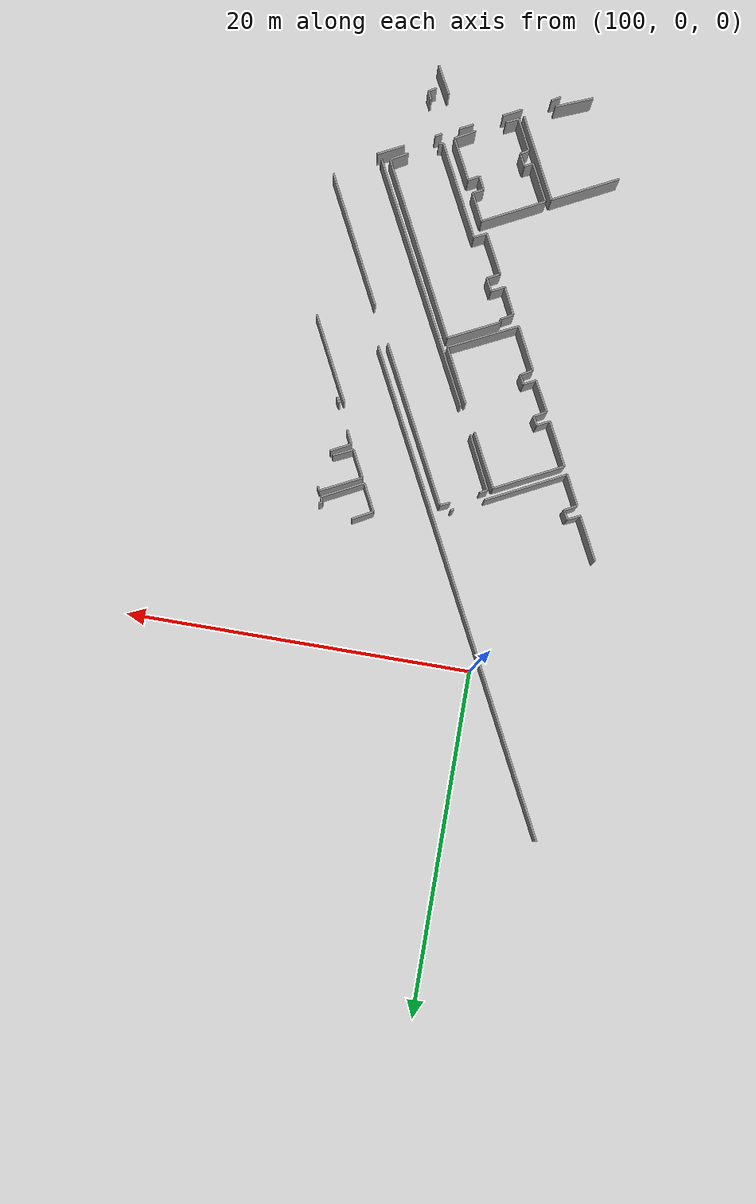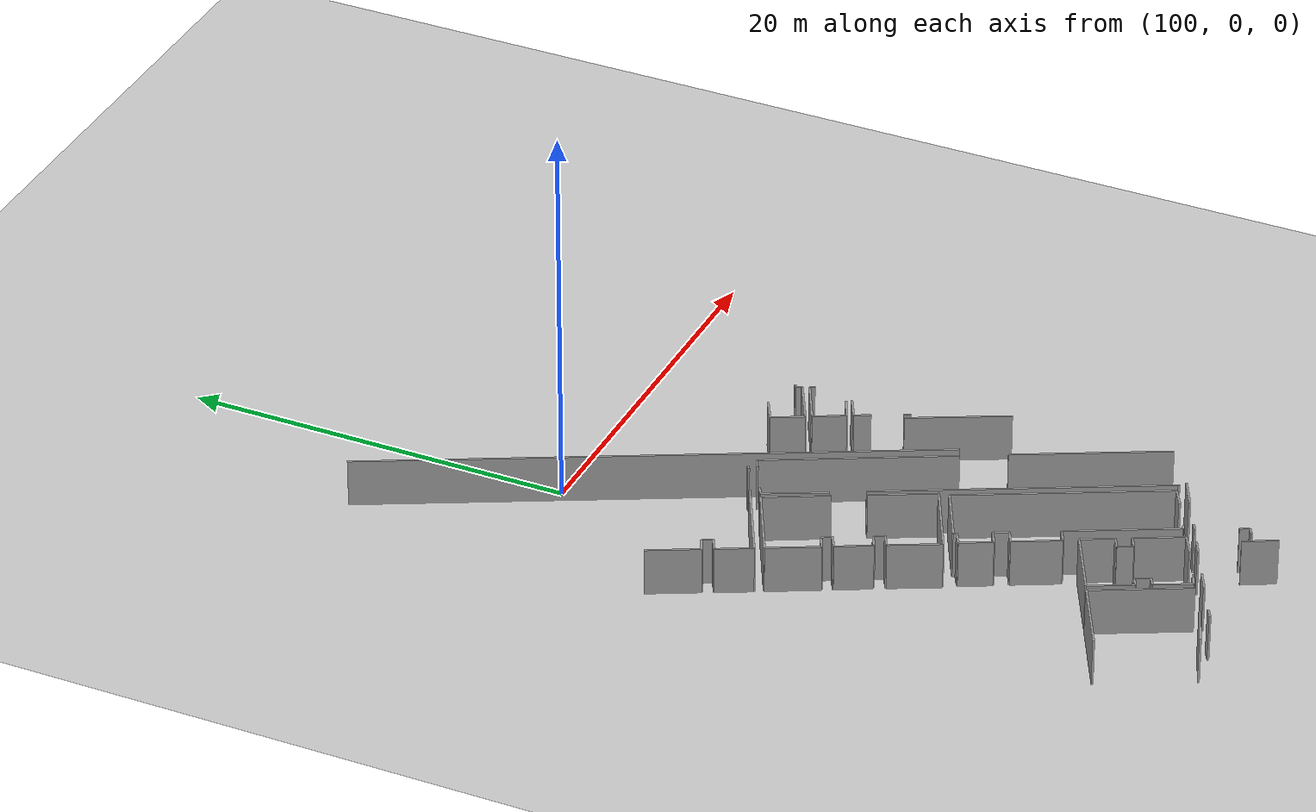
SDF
<sdf version="1.6">
 <world name="default">
  <model name="ground_plane">
   <static>1</static>
   <link name="link">
    <collision name="collision">
     <geometry><plane><normal>0 0 1</normal><size>100 100</size></plane></geometry>
     <surface><friction><ode><mu>100</mu><mu2>50</mu2></ode></friction></surface>
    </collision>
    <visual name="visual">
     <cast_shadows>0</cast_shadows>
     <geometry><plane><normal>0 0 1</normal><size>100 100</size></plane></geometry>
     <material>
      <script><uri>file://media/materials/scripts/gazebo.material</uri><name>Gazebo/Grey</name></script>
     </material>
    </visual>
   </link>
  </model>
  <model name="0510045925_40">
   <static>1</static>
   <link name="Wall_0">
    <collision name="Wall_0_Collision">
     <geometry><box><size>1.88859896353 0.1 2.5</size></box></geometry>
     <pose>0.944299481767 0 1.25 0 0 0</pose>
    </collision>
    <visual name="Wall_0_Visual">
     <pose>0.944299481767 0 1.25 0 0 0</pose>
     <geometry><box><size>1.88859896353 0.1 2.5</size></box></geometry>
     <material>
      <script><uri>file://media/materials/scripts/gazebo.material</uri><name>Gazebo/Grey</name></script>
      <ambient>1 1 1 1</ambient>
     </material>
    </visual>
    <pose>230.382782163 -112.972183447 0 0 0 2.03913168318</pose>
   </link>
   <link name="Wall_1">
    <collision name="Wall_1_Collision">
     <geometry><box><size>0.791682347017 0.1 2.5</size></box></geometry>
     <pose>0.395841173508 0 1.25 0 0 0</pose>
    </collision>
    <visual name="Wall_1_Visual">
     <pose>0.395841173508 0 1.25 0 0 0</pose>
     <geometry><box><size>0.791682347017 0.1 2.5</size></box></geometry>
     <material>
      <script><uri>file://media/materials/scripts/gazebo.material</uri><name>Gazebo/Grey</name></script>
      <ambient>1 1 1 1</ambient>
     </material>
    </visual>
    <pose>229.530265729 -111.286947032 0 0 0 0.492899159813</pose>
   </link>
   <link name="Wall_2">
    <collision name="Wall_2_Collision">
     <geometry><box><size>0.554091668918 0.1 2.5</size></box></geometry>
     <pose>0.277045834459 0 1.25 0 0 0</pose>
    </collision>
    <visual name="Wall_2_Visual">
     <pose>0.277045834459 0 1.25 0 0 0</pose>
     <geometry><box><size>0.554091668918 0.1 2.5</size></box></geometry>
     <material>
      <script><uri>file://media/materials/scripts/gazebo.material</uri><name>Gazebo/Grey</name></script>
      <ambient>1 1 1 1</ambient>
     </material>
    </visual>
    <pose>230.227709957 -110.91233725 0 0 0 2.06107698116</pose>
   </link>
   <link name="Wall_3">
    <collision name="Wall_3_Collision">
     <geometry><box><size>0.772580104799 0.1 2.5</size></box></geometry>
     <pose>0.3862900524 0 1.25 0 0 0</pose>
    </collision>
    <visual name="Wall_3_Visual">
     <pose>0.3862900524 0 1.25 0 0 0</pose>
     <geometry><box><size>0.772580104799 0.1 2.5</size></box></geometry>
     <material>
      <script><uri>file://media/materials/scripts/gazebo.material</uri><name>Gazebo/Grey</name></script>
      <ambient>1 1 1 1</ambient>
     </material>
    </visual>
    <pose>229.966802873 -110.42351717 0 0 0 -2.71085980303</pose>
   </link>
   <link name="Wall_4">
    <collision name="Wall_4_Collision">
     <geometry><box><size>2.72097665282 0.1 2.5</size></box></geometry>
     <pose>1.36048832641 0 1.25 0 0 0</pose>
    </collision>
    <visual name="Wall_4_Visual">
     <pose>1.36048832641 0 1.25 0 0 0</pose>
     <geometry><box><size>2.72097665282 0.1 2.5</size></box></geometry>
     <material>
      <script><uri>file://media/materials/scripts/gazebo.material</uri><name>Gazebo/Grey</name></script>
      <ambient>1 1 1 1</ambient>
     </material>
    </visual>
    <pose>229.264790234 -110.746097815 0 0 0 2.04211940662</pose>
   </link>
   <link name="Wall_35">
    <collision name="Wall_35_Collision">
     <geometry><box><size>0.193588526439 0.1 2.5</size></box></geometry>
     <pose>0.0967942632194 0 1.25 0 0 0</pose>
    </collision>
    <visual name="Wall_35_Visual">
     <pose>0.0967942632194 0 1.25 0 0 0</pose>
     <geometry><box><size>0.193588526439 0.1 2.5</size></box></geometry>
     <material>
      <script><uri>file://media/materials/scripts/gazebo.material</uri><name>Gazebo/Grey</name></script>
      <ambient>1 1 1 1</ambient>
     </material>
    </visual>
    <pose>236.592015431 -109.818963986 0 0 0 -2.54268139186</pose>
   </link>
   <link name="Wall_36">
    <collision name="Wall_36_Collision">
     <geometry><box><size>4.93782871065 0.1 2.5</size></box></geometry>
     <pose>2.46891435533 0 1.25 0 0 0</pose>
    </collision>
    <visual name="Wall_36_Visual">
     <pose>2.46891435533 0 1.25 0 0 0</pose>
     <geometry><box><size>4.93782871065 0.1 2.5</size></box></geometry>
     <material>
      <script><uri>file://media/materials/scripts/gazebo.material</uri><name>Gazebo/Grey</name></script>
      <ambient>1 1 1 1</ambient>
     </material>
    </visual>
    <pose>234.784954697 -110.735438187 0 0 0 -2.67148580978</pose>
   </link>
   <link name="Wall_37">
    <collision name="Wall_37_Collision">
     <geometry><box><size>2.68594198004 0.1 2.5</size></box></geometry>
     <pose>1.34297099002 0 1.25 0 0 0</pose>
    </collision>
    <visual name="Wall_37_Visual">
     <pose>1.34297099002 0 1.25 0 0 0</pose>
     <geometry><box><size>2.68594198004 0.1 2.5</size></box></geometry>
     <material>
      <script><uri>file://media/materials/scripts/gazebo.material</uri><name>Gazebo/Grey</name></script>
      <ambient>1 1 1 1</ambient>
     </material>
    </visual>
    <pose>234.472779879 -120.960559377 0 0 0 2.03626103995</pose>
   </link>
   <link name="Wall_38">
    <collision name="Wall_38_Collision">
     <geometry><box><size>0.76813784894 0.1 2.5</size></box></geometry>
     <pose>0.38406892447 0 1.25 0 0 0</pose>
    </collision>
    <visual name="Wall_38_Visual">
     <pose>0.38406892447 0 1.25 0 0 0</pose>
     <geometry><box><size>0.76813784894 0.1 2.5</size></box></geometry>
     <material>
      <script><uri>file://media/materials/scripts/gazebo.material</uri><name>Gazebo/Grey</name></script>
      <ambient>1 1 1 1</ambient>
     </material>
    </visual>
    <pose>233.26722672 -118.560366488 0 0 0 0.504146009762</pose>
   </link>
   <link name="Wall_39">
    <collision name="Wall_39_Collision">
     <geometry><box><size>0.570086011849 0.1 2.5</size></box></geometry>
     <pose>0.285043005925 0 1.25 0 0 0</pose>
    </collision>
    <visual name="Wall_39_Visual">
     <pose>0.285043005925 0 1.25 0 0 0</pose>
     <geometry><box><size>0.570086011849 0.1 2.5</size></box></geometry>
     <material>
      <script><uri>file://media/materials/scripts/gazebo.material</uri><name>Gazebo/Grey</name></script>
      <ambient>1 1 1 1</ambient>
     </material>
    </visual>
    <pose>233.939798482 -118.189309916 0 0 0 2.07746241748</pose>
   </link>
   <link name="Wall_40">
    <collision name="Wall_40_Collision">
     <geometry><box><size>0.750030735713 0.1 2.5</size></box></geometry>
     <pose>0.375015367857 0 1.25 0 0 0</pose>
    </collision>
    <visual name="Wall_40_Visual">
     <pose>0.375015367857 0 1.25 0 0 0</pose>
     <geometry><box><size>0.750030735713 0.1 2.5</size></box></geometry>
     <material>
      <script><uri>file://media/materials/scripts/gazebo.material</uri><name>Gazebo/Grey</name></script>
      <ambient>1 1 1 1</ambient>
     </material>
    </visual>
    <pose>233.663155757 -117.69084541 0 0 0 -2.67552374181</pose>
   </link>
   <link name="Wall_41">
    <collision name="Wall_41_Collision">
     <geometry><box><size>1.91479657271 0.1 2.5</size></box></geometry>
     <pose>0.957398286355 0 1.25 0 0 0</pose>
    </collision>
    <visual name="Wall_41_Visual">
     <pose>0.957398286355 0 1.25 0 0 0</pose>
     <geometry><box><size>1.91479657271 0.1 2.5</size></box></geometry>
     <material>
      <script><uri>file://media/materials/scripts/gazebo.material</uri><name>Gazebo/Grey</name></script>
      <ambient>1 1 1 1</ambient>
     </material>
    </visual>
    <pose>232.993122002 -118.027892693 0 0 0 2.0562002558</pose>
   </link>
   <link name="Wall_42">
    <collision name="Wall_42_Collision">
     <geometry><box><size>0.798350596777 0.1 2.5</size></box></geometry>
     <pose>0.399175298389 0 1.25 0 0 0</pose>
    </collision>
    <visual name="Wall_42_Visual">
     <pose>0.399175298389 0 1.25 0 0 0</pose>
     <geometry><box><size>0.798350596777 0.1 2.5</size></box></geometry>
     <material>
      <script><uri>file://media/materials/scripts/gazebo.material</uri><name>Gazebo/Grey</name></script>
      <ambient>1 1 1 1</ambient>
     </material>
    </visual>
    <pose>232.099743661 -116.334280856 0 0 0 0.500336217475</pose>
   </link>
   <link name="Wall_43">
    <collision name="Wall_43_Collision">
     <geometry><box><size>0.546959511866 0.1 2.5</size></box></geometry>
     <pose>0.273479755933 0 1.25 0 0 0</pose>
    </collision>
    <visual name="Wall_43_Visual">
     <pose>0.273479755933 0 1.25 0 0 0</pose>
     <geometry><box><size>0.546959511866 0.1 2.5</size></box></geometry>
     <material>
      <script><uri>file://media/materials/scripts/gazebo.material</uri><name>Gazebo/Grey</name></script>
      <ambient>1 1 1 1</ambient>
     </material>
    </visual>
    <pose>232.800233497 -115.951295652 0 0 0 2.06910612702</pose>
   </link>
   <link name="Wall_44">
    <collision name="Wall_44_Collision">
     <geometry><box><size>0.783648546966 0.1 2.5</size></box></geometry>
     <pose>0.391824273483 0 1.25 0 0 0</pose>
    </collision>
    <visual name="Wall_44_Visual">
     <pose>0.391824273483 0 1.25 0 0 0</pose>
     <geometry><box><size>0.783648546966 0.1 2.5</size></box></geometry>
     <material>
      <script><uri>file://media/materials/scripts/gazebo.material</uri><name>Gazebo/Grey</name></script>
      <ambient>1 1 1 1</ambient>
     </material>
    </visual>
    <pose>232.538818812 -115.470850994 0 0 0 -2.67026848623</pose>
   </link>
   <link name="Wall_45">
    <collision name="Wall_45_Collision">
     <geometry><box><size>2.71553219411 0.1 2.5</size></box></geometry>
     <pose>1.35776609705 0 1.25 0 0 0</pose>
    </collision>
    <visual name="Wall_45_Visual">
     <pose>1.35776609705 0 1.25 0 0 0</pose>
     <geometry><box><size>2.71553219411 0.1 2.5</size></box></geometry>
     <material>
      <script><uri>file://media/materials/scripts/gazebo.material</uri><name>Gazebo/Grey</name></script>
      <ambient>1 1 1 1</ambient>
     </material>
    </visual>
    <pose>231.840613182 -115.826679526 0 0 0 2.04230199174</pose>
   </link>
   <link name="Wall_46">
    <collision name="Wall_46_Collision">
     <geometry><box><size>4.27559902582 0.1 2.5</size></box></geometry>
     <pose>2.13779951291 0 1.25 0 0 0</pose>
    </collision>
    <visual name="Wall_46_Visual">
     <pose>2.13779951291 0 1.25 0 0 0</pose>
     <geometry><box><size>4.27559902582 0.1 2.5</size></box></geometry>
     <material>
      <script><uri>file://media/materials/scripts/gazebo.material</uri><name>Gazebo/Grey</name></script>
      <ambient>1 1 1 1</ambient>
     </material>
    </visual>
    <pose>230.607141951 -113.407451588 0 0 0 0.468505676917</pose>
   </link>
   <link name="Wall_47">
    <collision name="Wall_47_Collision">
     <geometry><box><size>3.38837195357 0.1 2.5</size></box></geometry>
     <pose>1.69418597679 0 1.25 0 0 0</pose>
    </collision>
    <visual name="Wall_47_Visual">
     <pose>1.69418597679 0 1.25 0 0 0</pose>
     <geometry><box><size>3.38837195357 0.1 2.5</size></box></geometry>
     <material>
      <script><uri>file://media/materials/scripts/gazebo.material</uri><name>Gazebo/Grey</name></script>
      <ambient>1 1 1 1</ambient>
     </material>
    </visual>
    <pose>234.422019746 -111.476789929 0 0 0 -1.09374918479</pose>
   </link>
   <link name="Wall_48">
    <collision name="Wall_48_Collision">
     <geometry><box><size>3.42417733766 0.1 2.5</size></box></geometry>
     <pose>1.71208866883 0 1.25 0 0 0</pose>
    </collision>
    <visual name="Wall_48_Visual">
     <pose>1.71208866883 0 1.25 0 0 0</pose>
     <geometry><box><size>3.42417733766 0.1 2.5</size></box></geometry>
     <material>
      <script><uri>file://media/materials/scripts/gazebo.material</uri><name>Gazebo/Grey</name></script>
      <ambient>1 1 1 1</ambient>
     </material>
    </visual>
    <pose>236.756985863 -116.035303672 0 0 0 -1.10413228568</pose>
   </link>
   <link name="Wall_49">
    <collision name="Wall_49_Collision">
     <geometry><box><size>4.25621784762 0.1 2.5</size></box></geometry>
     <pose>2.12810892381 0 1.25 0 0 0</pose>
    </collision>
    <visual name="Wall_49_Visual">
     <pose>2.12810892381 0 1.25 0 0 0</pose>
     <geometry><box><size>4.25621784762 0.1 2.5</size></box></geometry>
     <material>
      <script><uri>file://media/materials/scripts/gazebo.material</uri><name>Gazebo/Grey</name></script>
      <ambient>1 1 1 1</ambient>
     </material>
    </visual>
    <pose>238.2975559 -119.093347885 0 0 0 -2.68743885221</pose>
   </link>
   <link name="Wall_50">
    <collision name="Wall_50_Collision">
     <geometry><box><size>14.9826140354 0.1 2.5</size></box></geometry>
     <pose>7.49130701768 0 1.25 0 0 0</pose>
    </collision>
    <visual name="Wall_50_Visual">
     <pose>7.49130701768 0 1.25 0 0 0</pose>
     <geometry><box><size>14.9826140354 0.1 2.5</size></box></geometry>
     <material>
      <script><uri>file://media/materials/scripts/gazebo.material</uri><name>Gazebo/Grey</name></script>
      <ambient>1 1 1 1</ambient>
     </material>
    </visual>
    <pose>243.802492323 -129.213141798 0 0 0 2.04202723866</pose>
   </link>
   <link name="Wall_51">
    <collision name="Wall_51_Collision">
     <geometry><box><size>3.32022371351 0.1 2.5</size></box></geometry>
     <pose>1.66011185675 0 1.25 0 0 0</pose>
    </collision>
    <visual name="Wall_51_Visual">
     <pose>1.66011185675 0 1.25 0 0 0</pose>
     <geometry><box><size>3.32022371351 0.1 2.5</size></box></geometry>
     <material>
      <script><uri>file://media/materials/scripts/gazebo.material</uri><name>Gazebo/Grey</name></script>
      <ambient>1 1 1 1</ambient>
     </material>
    </visual>
    <pose>236.175782341 -114.308697749 0 0 0 2.03013656465</pose>
   </link>
   <link name="Wall_52">
    <collision name="Wall_52_Collision">
     <geometry><box><size>0.480639025663 0.1 2.5</size></box></geometry>
     <pose>0.240319512832 0 1.25 0 0 0</pose>
    </collision>
    <visual name="Wall_52_Visual">
     <pose>0.240319512832 0 1.25 0 0 0</pose>
     <geometry><box><size>0.480639025663 0.1 2.5</size></box></geometry>
     <material>
      <script><uri>file://media/materials/scripts/gazebo.material</uri><name>Gazebo/Grey</name></script>
      <ambient>1 1 1 1</ambient>
     </material>
    </visual>
    <pose>234.703738484 -111.332631151 0 0 0 0.491044484923</pose>
   </link>
   <link name="Wall_53">
    <collision name="Wall_53_Collision">
     <geometry><box><size>0.603206230897 0.1 2.5</size></box></geometry>
     <pose>0.301603115448 0 1.25 0 0 0</pose>
    </collision>
    <visual name="Wall_53_Visual">
     <pose>0.301603115448 0 1.25 0 0 0</pose>
     <geometry><box><size>0.603206230897 0.1 2.5</size></box></geometry>
     <material>
      <script><uri>file://media/materials/scripts/gazebo.material</uri><name>Gazebo/Grey</name></script>
      <ambient>1 1 1 1</ambient>
     </material>
    </visual>
    <pose>236.693535697 -110.264637953 0 0 0 0.440312865399</pose>
   </link>
   <link name="Wall_54">
    <collision name="Wall_54_Collision">
     <geometry><box><size>9.79878650992 0.1 2.5</size></box></geometry>
     <pose>4.89939325496 0 1.25 0 0 0</pose>
    </collision>
    <visual name="Wall_54_Visual">
     <pose>4.89939325496 0 1.25 0 0 0</pose>
     <geometry><box><size>9.79878650992 0.1 2.5</size></box></geometry>
     <material>
      <script><uri>file://media/materials/scripts/gazebo.material</uri><name>Gazebo/Grey</name></script>
      <ambient>1 1 1 1</ambient>
     </material>
    </visual>
    <pose>237.239207127 -110.00753788 0 0 0 -1.09687407531</pose>
   </link>
   <link name="Wall_55">
    <collision name="Wall_55_Collision">
     <geometry><box><size>8.03569557212 0.1 2.5</size></box></geometry>
     <pose>4.01784778606 0 1.25 0 0 0</pose>
    </collision>
    <visual name="Wall_55_Visual">
     <pose>4.01784778606 0 1.25 0 0 0</pose>
     <geometry><box><size>8.03569557212 0.1 2.5</size></box></geometry>
     <material>
      <script><uri>file://media/materials/scripts/gazebo.material</uri><name>Gazebo/Grey</name></script>
      <ambient>1 1 1 1</ambient>
     </material>
    </visual>
    <pose>242.799979696 -120.817162001 0 0 0 -1.10147049191</pose>
   </link>
   <link name="Wall_56">
    <collision name="Wall_56_Collision">
     <geometry><box><size>0.104498397889 0.1 2.5</size></box></geometry>
     <pose>0.0522491989443 0 1.25 0 0 0</pose>
    </collision>
    <visual name="Wall_56_Visual">
     <pose>0.0522491989443 0 1.25 0 0 0</pose>
     <geometry><box><size>0.104498397889 0.1 2.5</size></box></geometry>
     <material>
      <script><uri>file://media/materials/scripts/gazebo.material</uri><name>Gazebo/Grey</name></script>
      <ambient>1 1 1 1</ambient>
     </material>
    </visual>
    <pose>243.845638436 -129.308317048 0 0 0 1.99641879513</pose>
   </link>
   <link name="Wall_58">
    <collision name="Wall_58_Collision">
     <geometry><box><size>4.10851946526 0.1 2.5</size></box></geometry>
     <pose>2.05425973263 0 1.25 0 0 0</pose>
    </collision>
    <visual name="Wall_58_Visual">
     <pose>2.05425973263 0 1.25 0 0 0</pose>
     <geometry><box><size>4.10851946526 0.1 2.5</size></box></geometry>
     <material>
      <script><uri>file://media/materials/scripts/gazebo.material</uri><name>Gazebo/Grey</name></script>
      <ambient>1 1 1 1</ambient>
     </material>
    </visual>
    <pose>230.144463338 -130.409050532 0 0 0 0.468454600182</pose>
   </link>
   <link name="Wall_59">
    <collision name="Wall_59_Collision">
     <geometry><box><size>5.12687668526 0.1 2.5</size></box></geometry>
     <pose>2.56343834263 0 1.25 0 0 0</pose>
    </collision>
    <visual name="Wall_59_Visual">
     <pose>2.56343834263 0 1.25 0 0 0</pose>
     <geometry><box><size>5.12687668526 0.1 2.5</size></box></geometry>
     <material>
      <script><uri>file://media/materials/scripts/gazebo.material</uri><name>Gazebo/Grey</name></script>
      <ambient>1 1 1 1</ambient>
     </material>
    </visual>
    <pose>233.810360143 -128.554021472 0 0 0 -1.09904581331</pose>
   </link>
   <link name="Wall_60">
    <collision name="Wall_60_Collision">
     <geometry><box><size>2.2424406191 0.1 2.5</size></box></geometry>
     <pose>1.12122030955 0 1.25 0 0 0</pose>
    </collision>
    <visual name="Wall_60_Visual">
     <pose>1.12122030955 0 1.25 0 0 0</pose>
     <geometry><box><size>2.2424406191 0.1 2.5</size></box></geometry>
     <material>
      <script><uri>file://media/materials/scripts/gazebo.material</uri><name>Gazebo/Grey</name></script>
      <ambient>1 1 1 1</ambient>
     </material>
    </visual>
    <pose>234.452475825 -134.002360346 0 0 0 -2.75368818955</pose>
   </link>
   <link name="Wall_61">
    <collision name="Wall_61_Collision">
     <geometry><box><size>1.94840018234 0.1 2.5</size></box></geometry>
     <pose>0.97420009117 0 1.25 0 0 0</pose>
    </collision>
    <visual name="Wall_61_Visual">
     <pose>0.97420009117 0 1.25 0 0 0</pose>
     <geometry><box><size>1.94840018234 0.1 2.5</size></box></geometry>
     <material>
      <script><uri>file://media/materials/scripts/gazebo.material</uri><name>Gazebo/Grey</name></script>
      <ambient>1 1 1 1</ambient>
     </material>
    </visual>
    <pose>236.409278952 -132.93512855 0 0 0 2.03689062787</pose>
   </link>
   <link name="Wall_62">
    <collision name="Wall_62_Collision">
     <geometry><box><size>0.530571853203 0.1 2.5</size></box></geometry>
     <pose>0.265285926601 0 1.25 0 0 0</pose>
    </collision>
    <visual name="Wall_62_Visual">
     <pose>0.265285926601 0 1.25 0 0 0</pose>
     <geometry><box><size>0.530571853203 0.1 2.5</size></box></geometry>
     <material>
      <script><uri>file://media/materials/scripts/gazebo.material</uri><name>Gazebo/Grey</name></script>
      <ambient>1 1 1 1</ambient>
     </material>
    </visual>
    <pose>235.533666658 -131.19456359 0 0 0 0.52401138973</pose>
   </link>
   <link name="Wall_63">
    <collision name="Wall_63_Collision">
     <geometry><box><size>0.772771179375 0.1 2.5</size></box></geometry>
     <pose>0.386385589687 0 1.25 0 0 0</pose>
    </collision>
    <visual name="Wall_63_Visual">
     <pose>0.386385589687 0 1.25 0 0 0</pose>
     <geometry><box><size>0.772771179375 0.1 2.5</size></box></geometry>
     <material>
      <script><uri>file://media/materials/scripts/gazebo.material</uri><name>Gazebo/Grey</name></script>
      <ambient>1 1 1 1</ambient>
     </material>
    </visual>
    <pose>235.993045862 -130.929088094 0 0 0 2.0448724649</pose>
   </link>
   <link name="Wall_64">
    <collision name="Wall_64_Collision">
     <geometry><box><size>0.523483421452 0.1 2.5</size></box></geometry>
     <pose>0.261741710726 0 1.25 0 0 0</pose>
    </collision>
    <visual name="Wall_64_Visual">
     <pose>0.261741710726 0 1.25 0 0 0</pose>
     <geometry><box><size>0.523483421452 0.1 2.5</size></box></geometry>
     <material>
      <script><uri>file://media/materials/scripts/gazebo.material</uri><name>Gazebo/Grey</name></script>
      <ambient>1 1 1 1</ambient>
     </material>
    </visual>
    <pose>235.640262937 -130.241542093 0 0 0 -2.67274127543</pose>
   </link>
   <link name="Wall_65">
    <collision name="Wall_65_Collision">
     <geometry><box><size>2.32954876165 0.1 2.5</size></box></geometry>
     <pose>1.16477438082 0 1.25 0 0 0</pose>
    </collision>
    <visual name="Wall_65_Visual">
     <pose>1.16477438082 0 1.25 0 0 0</pose>
     <geometry><box><size>2.32954876165 0.1 2.5</size></box></geometry>
     <material>
      <script><uri>file://media/materials/scripts/gazebo.material</uri><name>Gazebo/Grey</name></script>
      <ambient>1 1 1 1</ambient>
     </material>
    </visual>
    <pose>235.173269714 -130.478084313 0 0 0 2.03751350324</pose>
   </link>
   <link name="Wall_66">
    <collision name="Wall_66_Collision">
     <geometry><box><size>3.86112657193 0.1 2.5</size></box></geometry>
     <pose>1.93056328597 0 1.25 0 0 0</pose>
    </collision>
    <visual name="Wall_66_Visual">
     <pose>1.93056328597 0 1.25 0 0 0</pose>
     <geometry><box><size>3.86112657193 0.1 2.5</size></box></geometry>
     <material>
      <script><uri>file://media/materials/scripts/gazebo.material</uri><name>Gazebo/Grey</name></script>
      <ambient>1 1 1 1</ambient>
     </material>
    </visual>
    <pose>234.125072968 -128.397680262 0 0 0 0.470526413986</pose>
   </link>
   <link name="Wall_67">
    <collision name="Wall_67_Collision">
     <geometry><box><size>1.72388533755 0.1 2.5</size></box></geometry>
     <pose>0.861942668773 0 1.25 0 0 0</pose>
    </collision>
    <visual name="Wall_67_Visual">
     <pose>0.861942668773 0 1.25 0 0 0</pose>
     <geometry><box><size>1.72388533755 0.1 2.5</size></box></geometry>
     <material>
      <script><uri>file://media/materials/scripts/gazebo.material</uri><name>Gazebo/Grey</name></script>
      <ambient>1 1 1 1</ambient>
     </material>
    </visual>
    <pose>237.566609985 -126.647217076 0 0 0 -1.10675366909</pose>
   </link>
   <link name="Wall_68">
    <collision name="Wall_68_Collision">
     <geometry><box><size>0.662430675133 0.1 2.5</size></box></geometry>
     <pose>0.331215337567 0 1.25 0 0 0</pose>
    </collision>
    <visual name="Wall_68_Visual">
     <pose>0.331215337567 0 1.25 0 0 0</pose>
     <geometry><box><size>0.662430675133 0.1 2.5</size></box></geometry>
     <material>
      <script><uri>file://media/materials/scripts/gazebo.material</uri><name>Gazebo/Grey</name></script>
      <ambient>1 1 1 1</ambient>
     </material>
    </visual>
    <pose>238.338164006 -128.188802315 0 0 0 -2.6573823905</pose>
   </link>
   <link name="Wall_69">
    <collision name="Wall_69_Collision">
     <geometry><box><size>0.801611671793 0.1 2.5</size></box></geometry>
     <pose>0.400805835897 0 1.25 0 0 0</pose>
    </collision>
    <visual name="Wall_69_Visual">
     <pose>0.400805835897 0 1.25 0 0 0</pose>
     <geometry><box><size>0.801611671793 0.1 2.5</size></box></geometry>
     <material>
      <script><uri>file://media/materials/scripts/gazebo.material</uri><name>Gazebo/Grey</name></script>
      <ambient>1 1 1 1</ambient>
     </material>
    </visual>
    <pose>237.75188447 -128.497170123 0 0 0 -1.11861805343</pose>
   </link>
   <link name="Wall_70">
    <collision name="Wall_70_Collision">
     <geometry><box><size>0.689273451419 0.1 2.5</size></box></geometry>
     <pose>0.34463672571 0 1.25 0 0 0</pose>
    </collision>
    <visual name="Wall_70_Visual">
     <pose>0.34463672571 0 1.25 0 0 0</pose>
     <geometry><box><size>0.689273451419 0.1 2.5</size></box></geometry>
     <material>
      <script><uri>file://media/materials/scripts/gazebo.material</uri><name>Gazebo/Grey</name></script>
      <ambient>1 1 1 1</ambient>
     </material>
    </visual>
    <pose>238.102129388 -129.218217812 0 0 0 0.479127268387</pose>
   </link>
   <link name="Wall_71">
    <collision name="Wall_71_Collision">
     <geometry><box><size>2.57526465923 0.1 2.5</size></box></geometry>
     <pose>1.28763232962 0 1.25 0 0 0</pose>
    </collision>
    <visual name="Wall_71_Visual">
     <pose>1.28763232962 0 1.25 0 0 0</pose>
     <geometry><box><size>2.57526465923 0.1 2.5</size></box></geometry>
     <material>
      <script><uri>file://media/materials/scripts/gazebo.material</uri><name>Gazebo/Grey</name></script>
      <ambient>1 1 1 1</ambient>
     </material>
    </visual>
    <pose>238.71378899 -128.900459379 0 0 0 -1.09806927759</pose>
   </link>
   <link name="Wall_72">
    <collision name="Wall_72_Collision">
     <geometry><box><size>1.28890535601 0.1 2.5</size></box></geometry>
     <pose>0.644452678003 0 1.25 0 0 0</pose>
    </collision>
    <visual name="Wall_72_Visual">
     <pose>0.644452678003 0 1.25 0 0 0</pose>
     <geometry><box><size>1.28890535601 0.1 2.5</size></box></geometry>
     <material>
      <script><uri>file://media/materials/scripts/gazebo.material</uri><name>Gazebo/Grey</name></script>
      <ambient>1 1 1 1</ambient>
     </material>
    </visual>
    <pose>239.886348062 -131.193294586 0 0 0 -2.63883571128</pose>
   </link>
   <link name="Wall_73">
    <collision name="Wall_73_Collision">
     <geometry><box><size>0.776444431224 0.1 2.5</size></box></geometry>
     <pose>0.388222215612 0 1.25 0 0 0</pose>
    </collision>
    <visual name="Wall_73_Visual">
     <pose>0.388222215612 0 1.25 0 0 0</pose>
     <geometry><box><size>0.776444431224 0.1 2.5</size></box></geometry>
     <material>
      <script><uri>file://media/materials/scripts/gazebo.material</uri><name>Gazebo/Grey</name></script>
      <ambient>1 1 1 1</ambient>
     </material>
    </visual>
    <pose>237.117382808 -132.616608716 0 0 0 -2.71888776986</pose>
   </link>
   <link name="Wall_104">
    <collision name="Wall_104_Collision">
     <geometry><box><size>0.566084959371 0.1 2.5</size></box></geometry>
     <pose>0.283042479685 0 1.25 0 0 0</pose>
    </collision>
    <visual name="Wall_104_Visual">
     <pose>0.283042479685 0 1.25 0 0 0</pose>
     <geometry><box><size>0.566084959371 0.1 2.5</size></box></geometry>
     <material>
      <script><uri>file://media/materials/scripts/gazebo.material</uri><name>Gazebo/Grey</name></script>
      <ambient>1 1 1 1</ambient>
     </material>
    </visual>
    <pose>234.239283267 -134.600314713 0 0 0 0.525040829642</pose>
   </link>
   <link name="Wall_105">
    <collision name="Wall_105_Collision">
     <geometry><box><size>1.17631964687 0.1 2.5</size></box></geometry>
     <pose>0.588159823433 0 1.25 0 0 0</pose>
    </collision>
    <visual name="Wall_105_Visual">
     <pose>0.588159823433 0 1.25 0 0 0</pose>
     <geometry><box><size>1.17631964687 0.1 2.5</size></box></geometry>
     <material>
      <script><uri>file://media/materials/scripts/gazebo.material</uri><name>Gazebo/Grey</name></script>
      <ambient>1 1 1 1</ambient>
     </material>
    </visual>
    <pose>236.29760666 -133.509225654 0 0 0 0.475805651226</pose>
   </link>
   <link name="Wall_106">
    <collision name="Wall_106_Collision">
     <geometry><box><size>0.834958517771 0.1 2.5</size></box></geometry>
     <pose>0.417479258885 0 1.25 0 0 0</pose>
    </collision>
    <visual name="Wall_106_Visual">
     <pose>0.417479258885 0 1.25 0 0 0</pose>
     <geometry><box><size>0.834958517771 0.1 2.5</size></box></geometry>
     <material>
      <script><uri>file://media/materials/scripts/gazebo.material</uri><name>Gazebo/Grey</name></script>
      <ambient>1 1 1 1</ambient>
     </material>
    </visual>
    <pose>238.947285602 -132.165858735 0 0 0 0.472075903171</pose>
   </link>
   <link name="Wall_107">
    <collision name="Wall_107_Collision">
     <geometry><box><size>1.79399776937 0.1 2.5</size></box></geometry>
     <pose>0.896998884685 0 1.25 0 0 0</pose>
    </collision>
    <visual name="Wall_107_Visual">
     <pose>0.896998884685 0 1.25 0 0 0</pose>
     <geometry><box><size>1.79399776937 0.1 2.5</size></box></geometry>
     <material>
      <script><uri>file://media/materials/scripts/gazebo.material</uri><name>Gazebo/Grey</name></script>
      <ambient>1 1 1 1</ambient>
     </material>
    </visual>
    <pose>240.640136037 -133.702875562 0 0 0 -1.08025646826</pose>
   </link>
   <link name="Wall_162">
    <collision name="Wall_162_Collision">
     <geometry><box><size>5.77723881959 0.1 2.5</size></box></geometry>
     <pose>2.88861940979 0 1.25 0 0 0</pose>
    </collision>
    <visual name="Wall_162_Visual">
     <pose>2.88861940979 0 1.25 0 0 0</pose>
     <geometry><box><size>5.77723881959 0.1 2.5</size></box></geometry>
     <material>
      <script><uri>file://media/materials/scripts/gazebo.material</uri><name>Gazebo/Grey</name></script>
      <ambient>1 1 1 1</ambient>
     </material>
    </visual>
    <pose>240.472627598 -130.787467323 0 0 0 2.04183112509</pose>
   </link>
   <link name="Wall_163">
    <collision name="Wall_163_Collision">
     <geometry><box><size>0.784877274041 0.1 2.5</size></box></geometry>
     <pose>0.392438637021 0 1.25 0 0 0</pose>
    </collision>
    <visual name="Wall_163_Visual">
     <pose>0.392438637021 0 1.25 0 0 0</pose>
     <geometry><box><size>0.784877274041 0.1 2.5</size></box></geometry>
     <material>
      <script><uri>file://media/materials/scripts/gazebo.material</uri><name>Gazebo/Grey</name></script>
      <ambient>1 1 1 1</ambient>
     </material>
    </visual>
    <pose>237.850866729 -125.639374635 0 0 0 -2.68083729972</pose>
   </link>
   <link name="Wall_164">
    <collision name="Wall_164_Collision">
     <geometry><box><size>2.49129827767 0.1 2.5</size></box></geometry>
     <pose>1.24564913884 0 1.25 0 0 0</pose>
    </collision>
    <visual name="Wall_164_Visual">
     <pose>1.24564913884 0 1.25 0 0 0</pose>
     <geometry><box><size>2.49129827767 0.1 2.5</size></box></geometry>
     <material>
      <script><uri>file://media/materials/scripts/gazebo.material</uri><name>Gazebo/Grey</name></script>
      <ambient>1 1 1 1</ambient>
     </material>
    </visual>
    <pose>237.147838887 -125.988350549 0 0 0 2.04474063768</pose>
   </link>
   <link name="Wall_165">
    <collision name="Wall_165_Collision">
     <geometry><box><size>0.790439587767 0.1 2.5</size></box></geometry>
     <pose>0.395219793883 0 1.25 0 0 0</pose>
    </collision>
    <visual name="Wall_165_Visual">
     <pose>0.395219793883 0 1.25 0 0 0</pose>
     <geometry><box><size>0.790439587767 0.1 2.5</size></box></geometry>
     <material>
      <script><uri>file://media/materials/scripts/gazebo.material</uri><name>Gazebo/Grey</name></script>
      <ambient>1 1 1 1</ambient>
     </material>
    </visual>
    <pose>236.010811908 -123.771655542 0 0 0 0.460488515547</pose>
   </link>
   <link name="Wall_166">
    <collision name="Wall_166_Collision">
     <geometry><box><size>0.790671521706 0.1 2.5</size></box></geometry>
     <pose>0.395335760853 0 1.25 0 0 0</pose>
    </collision>
    <visual name="Wall_166_Visual">
     <pose>0.395335760853 0 1.25 0 0 0</pose>
     <geometry><box><size>0.790671521706 0.1 2.5</size></box></geometry>
     <material>
      <script><uri>file://media/materials/scripts/gazebo.material</uri><name>Gazebo/Grey</name></script>
      <ambient>1 1 1 1</ambient>
     </material>
    </visual>
    <pose>236.718915764 -123.420395421 0 0 0 2.0297066758</pose>
   </link>
   <link name="Wall_167">
    <collision name="Wall_167_Collision">
     <geometry><box><size>0.825530857242 0.1 2.5</size></box></geometry>
     <pose>0.412765428621 0 1.25 0 0 0</pose>
    </collision>
    <visual name="Wall_167_Visual">
     <pose>0.412765428621 0 1.25 0 0 0</pose>
     <geometry><box><size>0.825530857242 0.1 2.5</size></box></geometry>
     <material>
      <script><uri>file://media/materials/scripts/gazebo.material</uri><name>Gazebo/Grey</name></script>
      <ambient>1 1 1 1</ambient>
     </material>
    </visual>
    <pose>236.368670846 -122.711530164 0 0 0 -2.68536962973</pose>
   </link>
   <link name="Wall_168">
    <collision name="Wall_168_Collision">
     <geometry><box><size>1.68897668451 0.1 2.5</size></box></geometry>
     <pose>0.844488342253 0 1.25 0 0 0</pose>
    </collision>
    <visual name="Wall_168_Visual">
     <pose>0.844488342253 0 1.25 0 0 0</pose>
     <geometry><box><size>1.68897668451 0.1 2.5</size></box></geometry>
     <material>
      <script><uri>file://media/materials/scripts/gazebo.material</uri><name>Gazebo/Grey</name></script>
      <ambient>1 1 1 1</ambient>
     </material>
    </visual>
    <pose>235.627572904 -123.075226517 0 0 0 2.02671559504</pose>
   </link>
   <link name="Wall_169">
    <collision name="Wall_169_Collision">
     <geometry><box><size>0.772154894335 0.1 2.5</size></box></geometry>
     <pose>0.386077447167 0 1.25 0 0 0</pose>
    </collision>
    <visual name="Wall_169_Visual">
     <pose>0.386077447167 0 1.25 0 0 0</pose>
     <geometry><box><size>0.772154894335 0.1 2.5</size></box></geometry>
     <material>
      <script><uri>file://media/materials/scripts/gazebo.material</uri><name>Gazebo/Grey</name></script>
      <ambient>1 1 1 1</ambient>
     </material>
    </visual>
    <pose>234.883936956 -121.558767544 0 0 0 0.493050897205</pose>
   </link>
   <link name="Wall_170">
    <collision name="Wall_170_Collision">
     <geometry><box><size>0.166859026961 0.1 2.5</size></box></geometry>
     <pose>0.0834295134804 0 1.25 0 0 0</pose>
    </collision>
    <visual name="Wall_170_Visual">
     <pose>0.0834295134804 0 1.25 0 0 0</pose>
     <geometry><box><size>0.166859026961 0.1 2.5</size></box></geometry>
     <material>
      <script><uri>file://media/materials/scripts/gazebo.material</uri><name>Gazebo/Grey</name></script>
      <ambient>1 1 1 1</ambient>
     </material>
    </visual>
    <pose>235.564122738 -121.193294586 0 0 0 1.89591387184</pose>
   </link>
   <link name="Wall_171">
    <collision name="Wall_171_Collision">
     <geometry><box><size>3.22488201347 0.1 2.5</size></box></geometry>
     <pose>1.61244100674 0 1.25 0 0 0</pose>
    </collision>
    <visual name="Wall_171_Visual">
     <pose>1.61244100674 0 1.25 0 0 0</pose>
     <geometry><box><size>3.22488201347 0.1 2.5</size></box></geometry>
     <material>
      <script><uri>file://media/materials/scripts/gazebo.material</uri><name>Gazebo/Grey</name></script>
      <ambient>1 1 1 1</ambient>
     </material>
    </visual>
    <pose>235.510824598 -121.035176772 0 0 0 0.459212892191</pose>
   </link>
   <link name="Wall_172">
    <collision name="Wall_172_Collision">
     <geometry><box><size>10.9094453472 0.1 2.5</size></box></geometry>
     <pose>5.45472267362 0 1.25 0 0 0</pose>
    </collision>
    <visual name="Wall_172_Visual">
     <pose>5.45472267362 0 1.25 0 0 0</pose>
     <geometry><box><size>10.9094453472 0.1 2.5</size></box></geometry>
     <material>
      <script><uri>file://media/materials/scripts/gazebo.material</uri><name>Gazebo/Grey</name></script>
      <ambient>1 1 1 1</ambient>
     </material>
    </visual>
    <pose>238.401614172 -119.605771427 0 0 0 -1.10097903933</pose>
   </link>
   <link name="Wall_173">
    <collision name="Wall_173_Collision">
     <geometry><box><size>1.10144295497 0.1 2.5</size></box></geometry>
     <pose>0.550721477486 0 1.25 0 0 0</pose>
    </collision>
    <visual name="Wall_173_Visual">
     <pose>0.550721477486 0 1.25 0 0 0</pose>
     <geometry><box><size>1.10144295497 0.1 2.5</size></box></geometry>
     <material>
      <script><uri>file://media/materials/scripts/gazebo.material</uri><name>Gazebo/Grey</name></script>
      <ambient>1 1 1 1</ambient>
     </material>
    </visual>
    <pose>243.340575112 -129.333189513 0 0 0 -2.6280484014</pose>
   </link>
   <link name="Wall_174">
    <collision name="Wall_174_Collision">
     <geometry><box><size>0.267988625692 0.1 2.5</size></box></geometry>
     <pose>0.133994312846 0 1.25 0 0 0</pose>
    </collision>
    <visual name="Wall_174_Visual">
     <pose>0.133994312846 0 1.25 0 0 0</pose>
     <geometry><box><size>0.267988625692 0.1 2.5</size></box></geometry>
     <material>
      <script><uri>file://media/materials/scripts/gazebo.material</uri><name>Gazebo/Grey</name></script>
      <ambient>1 1 1 1</ambient>
     </material>
    </visual>
    <pose>240.731504277 -130.718179742 0 0 0 -2.88007518157</pose>
   </link>
   <link name="Wall_176">
    <collision name="Wall_176_Collision">
     <geometry><box><size>0.491215500439 0.1 2.5</size></box></geometry>
     <pose>0.245607750219 0 1.25 0 0 0</pose>
    </collision>
    <visual name="Wall_176_Visual">
     <pose>0.245607750219 0 1.25 0 0 0</pose>
     <geometry><box><size>0.491215500439 0.1 2.5</size></box></geometry>
     <material>
      <script><uri>file://media/materials/scripts/gazebo.material</uri><name>Gazebo/Grey</name></script>
      <ambient>1 1 1 1</ambient>
     </material>
    </visual>
    <pose>241.399000025 -133.925204944 0 0 0 0.519594717139</pose>
   </link>
   <link name="Wall_177">
    <collision name="Wall_177_Collision">
     <geometry><box><size>0.514170331652 0.1 2.5</size></box></geometry>
     <pose>0.257085165826 0 1.25 0 0 0</pose>
    </collision>
    <visual name="Wall_177_Visual">
     <pose>0.257085165826 0 1.25 0 0 0</pose>
     <geometry><box><size>0.514170331652 0.1 2.5</size></box></geometry>
     <material>
      <script><uri>file://media/materials/scripts/gazebo.material</uri><name>Gazebo/Grey</name></script>
      <ambient>1 1 1 1</ambient>
     </material>
    </visual>
    <pose>241.825385143 -133.681302505 0 0 0 2.03665143773</pose>
   </link>
   <link name="Wall_178">
    <collision name="Wall_178_Collision">
     <geometry><box><size>0.429302980774 0.1 2.5</size></box></geometry>
     <pose>0.214651490387 0 1.25 0 0 0</pose>
    </collision>
    <visual name="Wall_178_Visual">
     <pose>0.214651490387 0 1.25 0 0 0</pose>
     <geometry><box><size>0.429302980774 0.1 2.5</size></box></geometry>
     <material>
      <script><uri>file://media/materials/scripts/gazebo.material</uri><name>Gazebo/Grey</name></script>
      <ambient>1 1 1 1</ambient>
     </material>
    </visual>
    <pose>240.640136037 -131.32831654 0 0 0 0.505433274809</pose>
   </link>
   <link name="Wall_179">
    <collision name="Wall_179_Collision">
     <geometry><box><size>1.64522794077 0.1 2.5</size></box></geometry>
     <pose>0.822613970384 0 1.25 0 0 0</pose>
    </collision>
    <visual name="Wall_179_Visual">
     <pose>0.822613970384 0 1.25 0 0 0</pose>
     <geometry><box><size>1.64522794077 0.1 2.5</size></box></geometry>
     <material>
      <script><uri>file://media/materials/scripts/gazebo.material</uri><name>Gazebo/Grey</name></script>
      <ambient>1 1 1 1</ambient>
     </material>
    </visual>
    <pose>242.657851324 -130.274536179 0 0 0 0.462957716044</pose>
   </link>
   <link name="Wall_261">
    <collision name="Wall_261_Collision">
     <geometry><box><size>1.71257715447 0.1 2.5</size></box></geometry>
     <pose>0.856288577236 0 1.25 0 0 0</pose>
    </collision>
    <visual name="Wall_261_Visual">
     <pose>0.856288577236 0 1.25 0 0 0</pose>
     <geometry><box><size>1.71257715447 0.1 2.5</size></box></geometry>
     <material>
      <script><uri>file://media/materials/scripts/gazebo.material</uri><name>Gazebo/Grey</name></script>
      <ambient>1 1 1 1</ambient>
     </material>
    </visual>
    <pose>241.688332783 -110.55727012 0 0 0 2.0414692709</pose>
   </link>
   <link name="Wall_262">
    <collision name="Wall_262_Collision">
     <geometry><box><size>1.31204428062 0.1 2.5</size></box></geometry>
     <pose>0.656022140308 0 1.25 0 0 0</pose>
    </collision>
    <visual name="Wall_262_Visual">
     <pose>0.656022140308 0 1.25 0 0 0</pose>
     <geometry><box><size>1.31204428062 0.1 2.5</size></box></geometry>
     <material>
      <script><uri>file://media/materials/scripts/gazebo.material</uri><name>Gazebo/Grey</name></script>
      <ambient>1 1 1 1</ambient>
     </material>
    </visual>
    <pose>240.911702749 -109.030912921 0 0 0 0.494622639121</pose>
   </link>
   <link name="Wall_267">
    <collision name="Wall_267_Collision">
     <geometry><box><size>0.234995295227 0.1 2.5</size></box></geometry>
     <pose>0.117497647614 0 1.25 0 0 0</pose>
    </collision>
    <visual name="Wall_267_Visual">
     <pose>0.117497647614 0 1.25 0 0 0</pose>
     <geometry><box><size>0.234995295227 0.1 2.5</size></box></geometry>
     <material>
      <script><uri>file://media/materials/scripts/gazebo.material</uri><name>Gazebo/Grey</name></script>
      <ambient>1 1 1 1</ambient>
     </material>
    </visual>
    <pose>244.074059034 -108.962640542 0 0 0 -2.65862377773</pose>
   </link>
   <link name="Wall_268">
    <collision name="Wall_268_Collision">
     <geometry><box><size>0.325825098561 0.1 2.5</size></box></geometry>
     <pose>0.16291254928 0 1.25 0 0 0</pose>
    </collision>
    <visual name="Wall_268_Visual">
     <pose>0.16291254928 0 1.25 0 0 0</pose>
     <geometry><box><size>0.325825098561 0.1 2.5</size></box></geometry>
     <material>
      <script><uri>file://media/materials/scripts/gazebo.material</uri><name>Gazebo/Grey</name></script>
      <ambient>1 1 1 1</ambient>
     </material>
    </visual>
    <pose>243.865942489 -109.071774828 0 0 0 -1.12805159624</pose>
   </link>
   <link name="Wall_269">
    <collision name="Wall_269_Collision">
     <geometry><box><size>2.60539886946 0.1 2.5</size></box></geometry>
     <pose>1.30269943473 0 1.25 0 0 0</pose>
    </collision>
    <visual name="Wall_269_Visual">
     <pose>1.30269943473 0 1.25 0 0 0</pose>
     <geometry><box><size>2.60539886946 0.1 2.5</size></box></geometry>
     <material>
      <script><uri>file://media/materials/scripts/gazebo.material</uri><name>Gazebo/Grey</name></script>
      <ambient>1 1 1 1</ambient>
     </material>
    </visual>
    <pose>244.005532854 -109.366183599 0 0 0 -2.66679228086</pose>
   </link>
   <link name="Wall_270">
    <collision name="Wall_270_Collision">
     <geometry><box><size>1.69032950101 0.1 2.5</size></box></geometry>
     <pose>0.845164750505 0 1.25 0 0 0</pose>
    </collision>
    <visual name="Wall_270_Visual">
     <pose>0.845164750505 0 1.25 0 0 0</pose>
     <geometry><box><size>1.69032950101 0.1 2.5</size></box></geometry>
     <material>
      <script><uri>file://media/materials/scripts/gazebo.material</uri><name>Gazebo/Grey</name></script>
      <ambient>1 1 1 1</ambient>
     </material>
    </visual>
    <pose>242.617243217 -112.353417426 0 0 0 2.04142743763</pose>
   </link>
   <link name="Wall_271">
    <collision name="Wall_271_Collision">
     <geometry><box><size>2.57152677365 0.1 2.5</size></box></geometry>
     <pose>1.28576338683 0 1.25 0 0 0</pose>
    </collision>
    <visual name="Wall_271_Visual">
     <pose>1.28576338683 0 1.25 0 0 0</pose>
     <geometry><box><size>2.57152677365 0.1 2.5</size></box></geometry>
     <material>
      <script><uri>file://media/materials/scripts/gazebo.material</uri><name>Gazebo/Grey</name></script>
      <ambient>1 1 1 1</ambient>
     </material>
    </visual>
    <pose>241.850765209 -110.846856679 0 0 0 0.464177269968</pose>
   </link>
   <link name="Wall_272">
    <collision name="Wall_272_Collision">
     <geometry><box><size>0.271568609073 0.1 2.5</size></box></geometry>
     <pose>0.135784304537 0 1.25 0 0 0</pose>
    </collision>
    <visual name="Wall_272_Visual">
     <pose>0.135784304537 0 1.25 0 0 0</pose>
     <geometry><box><size>0.271568609073 0.1 2.5</size></box></geometry>
     <material>
      <script><uri>file://media/materials/scripts/gazebo.material</uri><name>Gazebo/Grey</name></script>
      <ambient>1 1 1 1</ambient>
     </material>
    </visual>
    <pose>244.150199234 -109.695616863 0 0 0 -1.08457730088</pose>
   </link>
   <link name="Wall_278">
    <collision name="Wall_278_Collision">
     <geometry><box><size>1.24167098294 0.1 2.5</size></box></geometry>
     <pose>0.620835491468 0 1.25 0 0 0</pose>
    </collision>
    <visual name="Wall_278_Visual">
     <pose>0.620835491468 0 1.25 0 0 0</pose>
     <geometry><box><size>1.24167098294 0.1 2.5</size></box></geometry>
     <material>
      <script><uri>file://media/materials/scripts/gazebo.material</uri><name>Gazebo/Grey</name></script>
      <ambient>1 1 1 1</ambient>
     </material>
    </visual>
    <pose>243.741580163 -111.826527246 0 0 0 -2.70336020015</pose>
   </link>
   <link name="Wall_279">
    <collision name="Wall_279_Collision">
     <geometry><box><size>0.365175325568 0.1 2.5</size></box></geometry>
     <pose>0.182587662784 0 1.25 0 0 0</pose>
    </collision>
    <visual name="Wall_279_Visual">
     <pose>0.182587662784 0 1.25 0 0 0</pose>
     <geometry><box><size>0.365175325568 0.1 2.5</size></box></geometry>
     <material>
      <script><uri>file://media/materials/scripts/gazebo.material</uri><name>Gazebo/Grey</name></script>
      <ambient>1 1 1 1</ambient>
     </material>
    </visual>
    <pose>244.046140961 -115.169082003 0 0 0 2.06304310122</pose>
   </link>
   <link name="Wall_280">
    <collision name="Wall_280_Collision">
     <geometry><box><size>0.85719501668 0.1 2.5</size></box></geometry>
     <pose>0.42859750834 0 1.25 0 0 0</pose>
    </collision>
    <visual name="Wall_280_Visual">
     <pose>0.42859750834 0 1.25 0 0 0</pose>
     <geometry><box><size>0.85719501668 0.1 2.5</size></box></geometry>
     <material>
      <script><uri>file://media/materials/scripts/gazebo.material</uri><name>Gazebo/Grey</name></script>
      <ambient>1 1 1 1</ambient>
     </material>
    </visual>
    <pose>243.170528667 -113.419634019 0 0 0 2.02769086049</pose>
   </link>
   <link name="Wall_281">
    <collision name="Wall_281_Collision">
     <geometry><box><size>1.2831386792 0.1 2.5</size></box></geometry>
     <pose>0.641569339602 0 1.25 0 0 0</pose>
    </collision>
    <visual name="Wall_281_Visual">
     <pose>0.641569339602 0 1.25 0 0 0</pose>
     <geometry><box><size>1.2831386792 0.1 2.5</size></box></geometry>
     <material>
      <script><uri>file://media/materials/scripts/gazebo.material</uri><name>Gazebo/Grey</name></script>
      <ambient>1 1 1 1</ambient>
     </material>
    </visual>
    <pose>242.792365676 -112.650364204 0 0 0 0.481870841438</pose>
   </link>
   <link name="Wall_317">
    <collision name="Wall_317_Collision">
     <geometry><box><size>29.5999207362 0.1 2.5</size></box></geometry>
     <pose>14.7999603681 0 1.25 0 0 0</pose>
    </collision>
    <visual name="Wall_317_Visual">
     <pose>14.7999603681 0 1.25 0 0 0</pose>
     <geometry><box><size>29.5999207362 0.1 2.5</size></box></geometry>
     <material>
      <script><uri>file://media/materials/scripts/gazebo.material</uri><name>Gazebo/Grey</name></script>
      <ambient>1 1 1 1</ambient>
     </material>
    </visual>
    <pose>242.22131418 -118.496916322 0 0 0 2.04182939386</pose>
   </link>
   <link name="Wall_327">
    <collision name="Wall_327_Collision">
     <geometry><box><size>5.28543065043 0.1 2.5</size></box></geometry>
     <pose>2.64271532521 0 1.25 0 0 0</pose>
    </collision>
    <visual name="Wall_327_Visual">
     <pose>2.64271532521 0 1.25 0 0 0</pose>
     <geometry><box><size>5.28543065043 0.1 2.5</size></box></geometry>
     <material>
      <script><uri>file://media/materials/scripts/gazebo.material</uri><name>Gazebo/Grey</name></script>
      <ambient>1 1 1 1</ambient>
     </material>
    </visual>
    <pose>243.612141824 -114.986345524 0 0 0 -1.10302556116</pose>
   </link>
   <pose>-133.95 101.083118449 0 0 0 0</pose>
  </model>
 </world>
</sdf>
